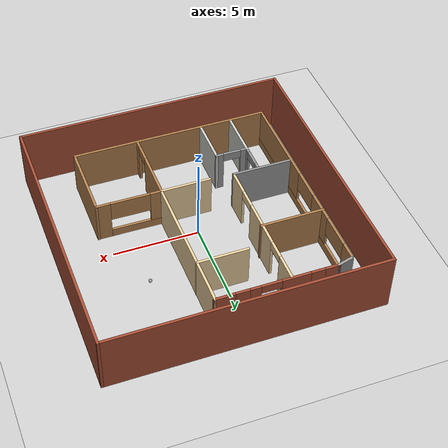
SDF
<sdf version="1.6">
 <world name="default">
  <plugin name="welcome_message" filename="libwelcome_message.so"/>
  <light name="sun" type="directional">
   <pose>0 0 10 0 -0 0</pose>
   <diffuse>0.8 0.8 0.8 1</diffuse>
   <specular>0.2 0.2 0.2 1</specular>
   <attenuation>
    <range>1000</range>
    <constant>0.9</constant>
    <linear>0.01</linear>
    <quadratic>0.001</quadratic>
   </attenuation>
   <direction>-0.5 0.1 -0.9</direction>
  </light>
  <model name="ground_plane">
   <static>1</static>
   <link name="link">
    <collision name="collision">
     <geometry><plane><normal>0 0 1</normal><size>100 100</size></plane></geometry>
     <surface>
      <contact><collide_bitmask>65535</collide_bitmask></contact>
      <friction><ode><mu>100</mu><mu2>50</mu2></ode></friction>
     </surface>
    </collision>
    <visual name="visual">
     <cast_shadows>0</cast_shadows>
     <geometry><plane><normal>0 0 1</normal><size>100 100</size></plane></geometry>
     <material>
      <script><uri>file://media/materials/scripts/gazebo.material</uri><name>Gazebo/Grey</name></script>
     </material>
    </visual>
   </link>
  </model>
  <gravity>0 0 -9.8</gravity>
  <magnetic_field>6e-06 2.3e-05 -4.2e-05</magnetic_field>
  <atmosphere type="adiabatic"/>
  <physics name="default_physics" default="0" type="ode">
   <max_step_size>0.001</max_step_size>
   <real_time_factor>1</real_time_factor>
   <real_time_update_rate>1000</real_time_update_rate>
  </physics>
  <scene><ambient>0.4 0.4 0.4 1</ambient><background>0.7 0.7 0.7 1</background><shadows>1</shadows></scene>
  <spherical_coordinates>
   <surface_model>EARTH_WGS84</surface_model>
   <latitude_deg>0</latitude_deg>
   <longitude_deg>0</longitude_deg>
   <elevation>0</elevation>
   <heading_deg>0</heading_deg>
  </spherical_coordinates>
  <model name="mybuilding">
   <pose>0.268 0.438 0 0 -0 0</pose>
   <link name="Wall_1">
    <collision name="Wall_1_Collision">
     <geometry><box><size>15.75 0.15 3.5</size></box></geometry>
     <pose>0 0 1.75 0 -0 0</pose>
    </collision>
    <visual name="Wall_1_Visual">
     <pose>0 0 1.75 0 -0 0</pose>
     <geometry><box><size>15.75 0.15 3.5</size></box></geometry>
     <material>
      <script><uri>file://media/materials/scripts/gazebo.material</uri><name>Gazebo/Bricks</name></script>
      <ambient>1 1 1 1</ambient>
     </material>
     <meta><layer>0</layer></meta>
    </visual>
    <pose>-7.8 0 0 0 0 -1.5708</pose>
   </link>
   <link name="Wall_10">
    <collision name="Wall_10_Collision">
     <geometry><box><size>11.6172 0.15 2.5</size></box></geometry>
     <pose>0 0 1.25 0 -0 0</pose>
    </collision>
    <visual name="Wall_10_Visual">
     <pose>0 0 1.25 0 -0 0</pose>
     <geometry><box><size>11.6172 0.15 2.5</size></box></geometry>
     <material>
      <script><uri>file://media/materials/scripts/gazebo.material</uri><name>Gazebo/Wood</name></script>
      <ambient>1 1 1 1</ambient>
     </material>
     <meta><layer>0</layer></meta>
    </visual>
    <pose>-0.627703 -6.25463 0 0 0 -0.001978</pose>
   </link>
   <link name="Wall_11">
    <collision name="Wall_11_Collision">
     <geometry><box><size>4.5 0.15 2.5</size></box></geometry>
     <pose>0 0 1.25 0 -0 0</pose>
    </collision>
    <visual name="Wall_11_Visual">
     <pose>0 0 1.25 0 -0 0</pose>
     <geometry><box><size>4.5 0.15 2.5</size></box></geometry>
     <material>
      <script><uri>file://media/materials/scripts/gazebo.material</uri><name>Gazebo/Wood</name></script>
      <ambient>1 1 1 1</ambient>
     </material>
     <meta><layer>0</layer></meta>
    </visual>
    <pose>5.12856 -4.06829 0 0 -0 1.5708</pose>
   </link>
   <link name="Wall_12">
    <pose>3.2473 -1.90463 0 0 -0 3.13549</pose>
    <visual name="Wall_12_Visual_0">
     <pose>-1.51079 0 1.25 0 -0 0</pose>
     <geometry><box><size>0.845659 0.15 2.5</size></box></geometry>
     <material>
      <script><uri>file://media/materials/scripts/gazebo.material</uri><name>Gazebo/Wood</name></script>
      <ambient>1 1 1 1</ambient>
     </material>
     <meta><layer>0</layer></meta>
    </visual>
    <collision name="Wall_12_Collision_0">
     <geometry><box><size>0.845659 0.15 2.5</size></box></geometry>
     <pose>-1.51079 0 1.25 0 -0 0</pose>
    </collision>
    <visual name="Wall_12_Visual_1">
     <pose>0.42283 0 0.25 0 -0 0</pose>
     <geometry><box><size>3.02157 0.15 0.5</size></box></geometry>
     <material>
      <script><uri>file://media/materials/scripts/gazebo.material</uri><name>Gazebo/Wood</name></script>
      <ambient>1 1 1 1</ambient>
     </material>
     <meta><layer>0</layer></meta>
    </visual>
    <collision name="Wall_12_Collision_1">
     <geometry><box><size>3.02157 0.15 0.5</size></box></geometry>
     <pose>0.42283 0 0.25 0 -0 0</pose>
    </collision>
    <visual name="Wall_12_Visual_2">
     <pose>1.56488 0 1.5 0 -0 0</pose>
     <geometry><box><size>0.737465 0.15 2</size></box></geometry>
     <material>
      <script><uri>file://media/materials/scripts/gazebo.material</uri><name>Gazebo/Wood</name></script>
      <ambient>1 1 1 1</ambient>
     </material>
     <meta><layer>0</layer></meta>
    </visual>
    <collision name="Wall_12_Collision_2">
     <geometry><box><size>0.737465 0.15 2</size></box></geometry>
     <pose>1.56488 0 1.5 0 -0 0</pose>
    </collision>
    <visual name="Wall_12_Visual_3">
     <pose>0.054097 0 1.9 0 -0 0</pose>
     <geometry><box><size>2.2841 0.15 1.2</size></box></geometry>
     <material>
      <script><uri>file://media/materials/scripts/gazebo.material</uri><name>Gazebo/Wood</name></script>
      <ambient>1 1 1 1</ambient>
     </material>
     <meta><layer>0</layer></meta>
    </visual>
    <collision name="Wall_12_Collision_3">
     <geometry><box><size>2.2841 0.15 1.2</size></box></geometry>
     <pose>0.054097 0 1.9 0 -0 0</pose>
    </collision>
   </link>
   <link name="Wall_13">
    <collision name="Wall_13_Collision">
     <geometry><box><size>8.4474 0.15 2.5</size></box></geometry>
     <pose>0 0 1.25 0 -0 0</pose>
    </collision>
    <visual name="Wall_13_Visual">
     <pose>0 0 1.25 0 -0 0</pose>
     <geometry><box><size>8.4474 0.15 2.5</size></box></geometry>
     <material>
      <script><uri>file://media/materials/scripts/gazebo.material</uri><name>Gazebo/Grey</name></script>
      <ambient>0.921569 0.807843 0.615686 1</ambient>
     </material>
     <meta><layer>0</layer></meta>
    </visual>
    <pose>1.36233 2.25533 0 0 -0 1.57716</pose>
   </link>
   <link name="Wall_15">
    <pose>-2.06267 6.40394 0 0 -0 3.14159</pose>
    <visual name="Wall_15_Visual_0">
     <pose>-2.90534 0 1.25 0 -0 0</pose>
     <geometry><box><size>1.18931 0.15 2.5</size></box></geometry>
     <material>
      <script><uri>file://media/materials/scripts/gazebo.material</uri><name>Gazebo/Bricks</name></script>
      <ambient>1 1 1 1</ambient>
     </material>
     <meta><layer>0</layer></meta>
    </visual>
    <collision name="Wall_15_Collision_0">
     <geometry><box><size>1.18931 0.15 2.5</size></box></geometry>
     <pose>-2.90534 0 1.25 0 -0 0</pose>
    </collision>
    <visual name="Wall_15_Visual_1">
     <pose>1.04595 0 1.25 0 -0 0</pose>
     <geometry><box><size>1.61849 0.15 2.5</size></box></geometry>
     <material>
      <script><uri>file://media/materials/scripts/gazebo.material</uri><name>Gazebo/Bricks</name></script>
      <ambient>1 1 1 1</ambient>
     </material>
     <meta><layer>0</layer></meta>
    </visual>
    <collision name="Wall_15_Collision_1">
     <geometry><box><size>1.61849 0.15 2.5</size></box></geometry>
     <pose>1.04595 0 1.25 0 -0 0</pose>
    </collision>
    <visual name="Wall_15_Visual_2">
     <pose>-1.60706 0 0.25 0 -0 0</pose>
     <geometry><box><size>1.40725 0.15 0.5</size></box></geometry>
     <material>
      <script><uri>file://media/materials/scripts/gazebo.material</uri><name>Gazebo/Bricks</name></script>
      <ambient>1 1 1 1</ambient>
     </material>
     <meta><layer>0</layer></meta>
    </visual>
    <collision name="Wall_15_Collision_2">
     <geometry><box><size>1.40725 0.15 0.5</size></box></geometry>
     <pose>-1.60706 0 0.25 0 -0 0</pose>
    </collision>
    <visual name="Wall_15_Visual_3">
     <pose>2.6776 0 0.25 0 -0 0</pose>
     <geometry><box><size>1.64481 0.15 0.5</size></box></geometry>
     <material>
      <script><uri>file://media/materials/scripts/gazebo.material</uri><name>Gazebo/Bricks</name></script>
      <ambient>1 1 1 1</ambient>
     </material>
     <meta><layer>0</layer></meta>
    </visual>
    <collision name="Wall_15_Collision_3">
     <geometry><box><size>1.64481 0.15 0.5</size></box></geometry>
     <pose>2.6776 0 0.25 0 -0 0</pose>
    </collision>
    <visual name="Wall_15_Visual_4">
     <pose>-1.20706 0 1.5 0 -0 0</pose>
     <geometry><box><size>0.60725 0.15 2</size></box></geometry>
     <material>
      <script><uri>file://media/materials/scripts/gazebo.material</uri><name>Gazebo/Bricks</name></script>
      <ambient>1 1 1 1</ambient>
     </material>
     <meta><layer>0</layer></meta>
    </visual>
    <collision name="Wall_15_Collision_4">
     <geometry><box><size>0.60725 0.15 2</size></box></geometry>
     <pose>-1.20706 0 1.5 0 -0 0</pose>
    </collision>
    <visual name="Wall_15_Visual_5">
     <pose>-1.20706 0 1.5 0 -0 0</pose>
     <geometry><box><size>0.60725 0.15 2</size></box></geometry>
     <material>
      <script><uri>file://media/materials/scripts/gazebo.material</uri><name>Gazebo/Bricks</name></script>
      <ambient>1 1 1 1</ambient>
     </material>
     <meta><layer>0</layer></meta>
    </visual>
    <collision name="Wall_15_Collision_5">
     <geometry><box><size>0.60725 0.15 2</size></box></geometry>
     <pose>-1.20706 0 1.5 0 -0 0</pose>
    </collision>
    <visual name="Wall_15_Visual_6">
     <pose>3.0776 0 1.5 0 -0 0</pose>
     <geometry><box><size>0.84481 0.15 2</size></box></geometry>
     <material>
      <script><uri>file://media/materials/scripts/gazebo.material</uri><name>Gazebo/Bricks</name></script>
      <ambient>1 1 1 1</ambient>
     </material>
     <meta><layer>0</layer></meta>
    </visual>
    <collision name="Wall_15_Collision_6">
     <geometry><box><size>0.84481 0.15 2</size></box></geometry>
     <pose>3.0776 0 1.5 0 -0 0</pose>
    </collision>
    <visual name="Wall_15_Visual_7">
     <pose>-1.91068 0 1.9 0 -0 0</pose>
     <geometry><box><size>0.8 0.15 1.2</size></box></geometry>
     <material>
      <script><uri>file://media/materials/scripts/gazebo.material</uri><name>Gazebo/Bricks</name></script>
      <ambient>1 1 1 1</ambient>
     </material>
     <meta><layer>0</layer></meta>
    </visual>
    <collision name="Wall_15_Collision_7">
     <geometry><box><size>0.8 0.15 1.2</size></box></geometry>
     <pose>-1.91068 0 1.9 0 -0 0</pose>
    </collision>
    <visual name="Wall_15_Visual_8">
     <pose>2.25519 0 1.9 0 -0 0</pose>
     <geometry><box><size>0.8 0.15 1.2</size></box></geometry>
     <material>
      <script><uri>file://media/materials/scripts/gazebo.material</uri><name>Gazebo/Bricks</name></script>
      <ambient>1 1 1 1</ambient>
     </material>
     <meta><layer>0</layer></meta>
    </visual>
    <collision name="Wall_15_Collision_8">
     <geometry><box><size>0.8 0.15 1.2</size></box></geometry>
     <pose>2.25519 0 1.9 0 -0 0</pose>
    </collision>
    <visual name="Wall_15_Visual_9">
     <pose>-0.333367 0 2.25 0 -0 0</pose>
     <geometry><box><size>1.14014 0.15 0.5</size></box></geometry>
     <material>
      <script><uri>file://media/materials/scripts/gazebo.material</uri><name>Gazebo/Bricks</name></script>
      <ambient>1 1 1 1</ambient>
     </material>
     <meta><layer>0</layer></meta>
    </visual>
    <collision name="Wall_15_Collision_9">
     <geometry><box><size>1.14014 0.15 0.5</size></box></geometry>
     <pose>-0.333367 0 2.25 0 -0 0</pose>
    </collision>
    <visual name="Wall_15_Visual_10">
     <pose>-0.333367 0 2.25 0 -0 0</pose>
     <geometry><box><size>1.14014 0.15 0.5</size></box></geometry>
     <material>
      <script><uri>file://media/materials/scripts/gazebo.material</uri><name>Gazebo/Bricks</name></script>
      <ambient>1 1 1 1</ambient>
     </material>
     <meta><layer>0</layer></meta>
    </visual>
    <collision name="Wall_15_Collision_10">
     <geometry><box><size>1.14014 0.15 0.5</size></box></geometry>
     <pose>-0.333367 0 2.25 0 -0 0</pose>
    </collision>
   </link>
   <link name="Wall_16">
    <collision name="Wall_16_Collision">
     <geometry><box><size>1 0.15 2.5</size></box></geometry>
     <pose>0 0 1.25 0 -0 0</pose>
    </collision>
    <visual name="Wall_16_Visual">
     <pose>0 0 1.25 0 -0 0</pose>
     <geometry><box><size>1 0.15 2.5</size></box></geometry>
     <material>
      <script><uri>file://media/materials/scripts/gazebo.material</uri><name>Gazebo/Grey</name></script>
      <ambient>1 1 1 1</ambient>
     </material>
     <meta><layer>0</layer></meta>
    </visual>
    <pose>-5.89818 6.29394 0 0 0 -2.87979</pose>
   </link>
   <link name="Wall_18">
    <pose>1.38872 -4.06829 0 0 0 -1.5708</pose>
    <visual name="Wall_18_Visual_0">
     <pose>-0.79921 0 1.25 0 -0 0</pose>
     <geometry><box><size>2.90158 0.15 2.5</size></box></geometry>
     <material>
      <script><uri>file://media/materials/scripts/gazebo.material</uri><name>Gazebo/Wood</name></script>
      <ambient>1 1 1 1</ambient>
     </material>
     <meta><layer>0</layer></meta>
    </visual>
    <collision name="Wall_18_Collision_0">
     <geometry><box><size>2.90158 0.15 2.5</size></box></geometry>
     <pose>-0.79921 0 1.25 0 -0 0</pose>
    </collision>
    <visual name="Wall_18_Visual_1">
     <pose>1.98655 0 1.25 0 -0 0</pose>
     <geometry><box><size>0.526894 0.15 2.5</size></box></geometry>
     <material>
      <script><uri>file://media/materials/scripts/gazebo.material</uri><name>Gazebo/Wood</name></script>
      <ambient>1 1 1 1</ambient>
     </material>
     <meta><layer>0</layer></meta>
    </visual>
    <collision name="Wall_18_Collision_1">
     <geometry><box><size>0.526894 0.15 2.5</size></box></geometry>
     <pose>1.98655 0 1.25 0 -0 0</pose>
    </collision>
    <visual name="Wall_18_Visual_2">
     <pose>1.18734 0 2.25 0 -0 0</pose>
     <geometry><box><size>1.07153 0.15 0.5</size></box></geometry>
     <material>
      <script><uri>file://media/materials/scripts/gazebo.material</uri><name>Gazebo/Wood</name></script>
      <ambient>1 1 1 1</ambient>
     </material>
     <meta><layer>0</layer></meta>
    </visual>
    <collision name="Wall_18_Collision_2">
     <geometry><box><size>1.07153 0.15 0.5</size></box></geometry>
     <pose>1.18734 0 2.25 0 -0 0</pose>
    </collision>
   </link>
   <link name="Wall_20">
    <pose>-2.86261 2.24435 0 0 0 -1.5708</pose>
    <visual name="Wall_20_Visual_0">
     <pose>-3.36815 0 1.25 0 -0 0</pose>
     <geometry><box><size>1.51371 0.15 2.5</size></box></geometry>
     <material>
      <script><uri>file://media/materials/scripts/gazebo.material</uri><name>Gazebo/Grey</name></script>
      <ambient>0.921569 0.807843 0.615686 1</ambient>
     </material>
     <meta><layer>0</layer></meta>
    </visual>
    <collision name="Wall_20_Collision_0">
     <geometry><box><size>1.51371 0.15 2.5</size></box></geometry>
     <pose>-3.36815 0 1.25 0 -0 0</pose>
    </collision>
    <visual name="Wall_20_Visual_1">
     <pose>-0.053108 0 1.25 0 -0 0</pose>
     <geometry><box><size>2.90134 0.15 2.5</size></box></geometry>
     <material>
      <script><uri>file://media/materials/scripts/gazebo.material</uri><name>Gazebo/Grey</name></script>
      <ambient>0.921569 0.807843 0.615686 1</ambient>
     </material>
     <meta><layer>0</layer></meta>
    </visual>
    <collision name="Wall_20_Collision_1">
     <geometry><box><size>2.90134 0.15 2.5</size></box></geometry>
     <pose>-0.053108 0 1.25 0 -0 0</pose>
    </collision>
    <visual name="Wall_20_Visual_2">
     <pose>3.34098 0 1.25 0 -0 0</pose>
     <geometry><box><size>1.56804 0.15 2.5</size></box></geometry>
     <material>
      <script><uri>file://media/materials/scripts/gazebo.material</uri><name>Gazebo/Grey</name></script>
      <ambient>0.921569 0.807843 0.615686 1</ambient>
     </material>
     <meta><layer>0</layer></meta>
    </visual>
    <collision name="Wall_20_Collision_2">
     <geometry><box><size>1.56804 0.15 2.5</size></box></geometry>
     <pose>3.34098 0 1.25 0 -0 0</pose>
    </collision>
    <visual name="Wall_20_Visual_3">
     <pose>-2.05754 0 2.25 0 -0 0</pose>
     <geometry><box><size>1.10752 0.15 0.5</size></box></geometry>
     <material>
      <script><uri>file://media/materials/scripts/gazebo.material</uri><name>Gazebo/Grey</name></script>
      <ambient>0.921569 0.807843 0.615686 1</ambient>
     </material>
     <meta><layer>0</layer></meta>
    </visual>
    <collision name="Wall_20_Collision_3">
     <geometry><box><size>1.10752 0.15 0.5</size></box></geometry>
     <pose>-2.05754 0 2.25 0 -0 0</pose>
    </collision>
    <visual name="Wall_20_Visual_4">
     <pose>1.97726 0 2.25 0 -0 0</pose>
     <geometry><box><size>1.1594 0.15 0.5</size></box></geometry>
     <material>
      <script><uri>file://media/materials/scripts/gazebo.material</uri><name>Gazebo/Grey</name></script>
      <ambient>0.921569 0.807843 0.615686 1</ambient>
     </material>
     <meta><layer>0</layer></meta>
    </visual>
    <collision name="Wall_20_Collision_4">
     <geometry><box><size>1.1594 0.15 0.5</size></box></geometry>
     <pose>1.97726 0 2.25 0 -0 0</pose>
    </collision>
   </link>
   <link name="Wall_21">
    <collision name="Wall_21_Collision">
     <geometry><box><size>3.5 0.15 2.5</size></box></geometry>
     <pose>0 0 1.25 0 -0 0</pose>
    </collision>
    <visual name="Wall_21_Visual">
     <pose>0 0 1.25 0 -0 0</pose>
     <geometry><box><size>3.5 0.15 2.5</size></box></geometry>
     <material>
      <script><uri>file://media/materials/scripts/gazebo.material</uri><name>Gazebo/Grey</name></script>
      <ambient>1 1 1 1</ambient>
     </material>
     <meta><layer>0</layer></meta>
    </visual>
    <pose>-4.53761 -1.80565 0 0 -0 3.14159</pose>
   </link>
   <link name="Wall_26">
    <collision name="Wall_26_Collision">
     <geometry><box><size>2.75 0.15 2.5</size></box></geometry>
     <pose>0 0 1.25 0 -0 0</pose>
    </collision>
    <visual name="Wall_26_Visual">
     <pose>0 0 1.25 0 -0 0</pose>
     <geometry><box><size>2.75 0.15 2.5</size></box></geometry>
     <material>
      <script><uri>file://media/materials/scripts/gazebo.material</uri><name>Gazebo/CeilingTiled</name></script>
      <ambient>1 1 1 1</ambient>
     </material>
     <meta><layer>0</layer></meta>
    </visual>
    <pose>-2.49644 -4.85535 0 0 -0 1.5708</pose>
   </link>
   <link name="Wall_27">
    <pose>-3.42144 -3.55535 0 0 -0 3.14159</pose>
    <visual name="Wall_27_Visual_0">
     <pose>-0.757188 0 1.25 0 -0 0</pose>
     <geometry><box><size>0.485624 0.15 2.5</size></box></geometry>
     <material>
      <script><uri>file://media/materials/scripts/gazebo.material</uri><name>Gazebo/Grey</name></script>
      <ambient>1 1 1 1</ambient>
     </material>
     <meta><layer>0</layer></meta>
    </visual>
    <collision name="Wall_27_Collision_0">
     <geometry><box><size>0.485624 0.15 2.5</size></box></geometry>
     <pose>-0.757188 0 1.25 0 -0 0</pose>
    </collision>
    <visual name="Wall_27_Visual_1">
     <pose>0.757661 0 1.25 0 -0 0</pose>
     <geometry><box><size>0.484678 0.15 2.5</size></box></geometry>
     <material>
      <script><uri>file://media/materials/scripts/gazebo.material</uri><name>Gazebo/Grey</name></script>
      <ambient>1 1 1 1</ambient>
     </material>
     <meta><layer>0</layer></meta>
    </visual>
    <collision name="Wall_27_Collision_1">
     <geometry><box><size>0.484678 0.15 2.5</size></box></geometry>
     <pose>0.757661 0 1.25 0 -0 0</pose>
    </collision>
    <visual name="Wall_27_Visual_2">
     <pose>0.000473 0 2.25 0 -0 0</pose>
     <geometry><box><size>1.0297 0.15 0.5</size></box></geometry>
     <material>
      <script><uri>file://media/materials/scripts/gazebo.material</uri><name>Gazebo/Grey</name></script>
      <ambient>1 1 1 1</ambient>
     </material>
     <meta><layer>0</layer></meta>
    </visual>
    <collision name="Wall_27_Collision_2">
     <geometry><box><size>1.0297 0.15 0.5</size></box></geometry>
     <pose>0.000473 0 2.25 0 -0 0</pose>
    </collision>
   </link>
   <link name="Wall_28">
    <pose>-4.34644 -2.75535 0 0 -0 1.5708</pose>
    <visual name="Wall_28_Visual_0">
     <pose>-0.675983 0 1.25 0 -0 0</pose>
     <geometry><box><size>0.398034 0.15 2.5</size></box></geometry>
     <material>
      <script><uri>file://media/materials/scripts/gazebo.material</uri><name>Gazebo/Grey</name></script>
      <ambient>1 1 1 1</ambient>
     </material>
     <meta><layer>0</layer></meta>
    </visual>
    <collision name="Wall_28_Collision_0">
     <geometry><box><size>0.398034 0.15 2.5</size></box></geometry>
     <pose>-0.675983 0 1.25 0 -0 0</pose>
    </collision>
    <visual name="Wall_28_Visual_1">
     <pose>0.700896 0 1.25 0 -0 0</pose>
     <geometry><box><size>0.348207 0.15 2.5</size></box></geometry>
     <material>
      <script><uri>file://media/materials/scripts/gazebo.material</uri><name>Gazebo/Grey</name></script>
      <ambient>1 1 1 1</ambient>
     </material>
     <meta><layer>0</layer></meta>
    </visual>
    <collision name="Wall_28_Collision_1">
     <geometry><box><size>0.348207 0.15 2.5</size></box></geometry>
     <pose>0.700896 0 1.25 0 -0 0</pose>
    </collision>
    <visual name="Wall_28_Visual_2">
     <pose>0.024914 0 2.25 0 -0 0</pose>
     <geometry><box><size>1.00376 0.15 0.5</size></box></geometry>
     <material>
      <script><uri>file://media/materials/scripts/gazebo.material</uri><name>Gazebo/Grey</name></script>
      <ambient>1 1 1 1</ambient>
     </material>
     <meta><layer>0</layer></meta>
    </visual>
    <collision name="Wall_28_Collision_2">
     <geometry><box><size>1.00376 0.15 0.5</size></box></geometry>
     <pose>0.024914 0 2.25 0 -0 0</pose>
    </collision>
   </link>
   <link name="Wall_30">
    <collision name="Wall_30_Collision">
     <geometry><box><size>2.75 0.15 2.5</size></box></geometry>
     <pose>0 0 1.25 0 -0 0</pose>
    </collision>
    <visual name="Wall_30_Visual">
     <pose>0 0 1.25 0 -0 0</pose>
     <geometry><box><size>2.75 0.15 2.5</size></box></geometry>
     <material>
      <script><uri>file://media/materials/scripts/gazebo.material</uri><name>Gazebo/CeilingTiled</name></script>
      <ambient>1 1 1 1</ambient>
     </material>
     <meta><layer>0</layer></meta>
    </visual>
    <pose>-4.34644 -4.85535 0 0 0 -1.5708</pose>
   </link>
   <link name="Wall_32">
    <collision name="Wall_32_Collision">
     <geometry><box><size>3.75 0.15 2.5</size></box></geometry>
     <pose>0 0 1.25 0 -0 0</pose>
    </collision>
    <visual name="Wall_32_Visual">
     <pose>0 0 1.25 0 -0 0</pose>
     <geometry><box><size>3.75 0.15 2.5</size></box></geometry>
     <material>
      <script><uri>file://media/materials/scripts/gazebo.material</uri><name>Gazebo/Wood</name></script>
      <ambient>1 1 1 1</ambient>
     </material>
     <meta><layer>0</layer></meta>
    </visual>
    <pose>-4.59551 2.45136 0 0 -0 3.14159</pose>
   </link>
   <link name="Wall_34">
    <collision name="Wall_34_Collision">
     <geometry><box><size>3 0.15 2.5</size></box></geometry>
     <pose>0 0 1.25 0 -0 0</pose>
    </collision>
    <visual name="Wall_34_Visual">
     <pose>0 0 1.25 0 -0 0</pose>
     <geometry><box><size>3 0.15 2.5</size></box></geometry>
     <material>
      <script><uri>file://media/materials/scripts/gazebo.material</uri><name>Gazebo/Grey</name></script>
      <ambient>0.921569 0.807843 0.615686 1</ambient>
     </material>
     <meta><layer>0</layer></meta>
    </visual>
    <pose>-0.061026 3.7617 0 0 -0 3.14159</pose>
   </link>
   <link name="Wall_36">
    <collision name="Wall_36_Collision">
     <geometry><box><size>3 0.15 2.5</size></box></geometry>
     <pose>0 0 1.25 0 -0 0</pose>
    </collision>
    <visual name="Wall_36_Visual">
     <pose>0 0 1.25 0 -0 0</pose>
     <geometry><box><size>3 0.15 2.5</size></box></geometry>
     <material>
      <script><uri>file://media/materials/scripts/gazebo.material</uri><name>Gazebo/Grey</name></script>
      <ambient>0.921569 0.807843 0.615686 1</ambient>
     </material>
     <meta><layer>0</layer></meta>
    </visual>
    <pose>-0.036282 -1.89329 0 0 -0 3.14159</pose>
   </link>
   <link name="Wall_4">
    <collision name="Wall_4_Collision">
     <geometry><box><size>15.75 0.15 3.5</size></box></geometry>
     <pose>0 0 1.75 0 -0 0</pose>
    </collision>
    <visual name="Wall_4_Visual">
     <pose>0 0 1.75 0 -0 0</pose>
     <geometry><box><size>15.75 0.15 3.5</size></box></geometry>
     <material>
      <script><uri>file://media/materials/scripts/gazebo.material</uri><name>Gazebo/Bricks</name></script>
      <ambient>1 1 1 1</ambient>
     </material>
     <meta><layer>0</layer></meta>
    </visual>
    <pose>0 -7.8 0 0 -0 0</pose>
   </link>
   <link name="Wall_5">
    <collision name="Wall_5_Collision">
     <geometry><box><size>15.75 0.15 3.5</size></box></geometry>
     <pose>0 0 1.75 0 -0 0</pose>
    </collision>
    <visual name="Wall_5_Visual">
     <pose>0 0 1.75 0 -0 0</pose>
     <geometry><box><size>15.75 0.15 3.5</size></box></geometry>
     <material>
      <script><uri>file://media/materials/scripts/gazebo.material</uri><name>Gazebo/Bricks</name></script>
      <ambient>1 1 1 1</ambient>
     </material>
     <meta><layer>0</layer></meta>
    </visual>
    <pose>7.8 0 0 0 -0 1.5708</pose>
   </link>
   <link name="Wall_6">
    <collision name="Wall_6_Collision">
     <geometry><box><size>15.75 0.15 3.5</size></box></geometry>
     <pose>0 0 1.75 0 -0 0</pose>
    </collision>
    <visual name="Wall_6_Visual">
     <pose>0 0 1.75 0 -0 0</pose>
     <geometry><box><size>15.75 0.15 3.5</size></box></geometry>
     <material>
      <script><uri>file://media/materials/scripts/gazebo.material</uri><name>Gazebo/Bricks</name></script>
      <ambient>1 1 1 1</ambient>
     </material>
     <meta><layer>0</layer></meta>
    </visual>
    <pose>0 7.8 0 0 -0 3.14159</pose>
   </link>
   <link name="Wall_8">
    <pose>-6.36128 -0.068291 0 0 0 -1.5708</pose>
    <visual name="Wall_8_Visual_0">
     <pose>-5.73233 0 1.25 0 -0 0</pose>
     <geometry><box><size>1.03535 0.15 2.5</size></box></geometry>
     <material>
      <script><uri>file://media/materials/scripts/gazebo.material</uri><name>Gazebo/Wood</name></script>
      <ambient>1 1 1 1</ambient>
     </material>
     <meta><layer>0</layer></meta>
    </visual>
    <collision name="Wall_8_Collision_0">
     <geometry><box><size>1.03535 0.15 2.5</size></box></geometry>
     <pose>-5.73233 0 1.25 0 -0 0</pose>
    </collision>
    <visual name="Wall_8_Visual_1">
     <pose>0.517674 0 0.25 0 -0 0</pose>
     <geometry><box><size>11.4647 0.15 0.5</size></box></geometry>
     <material>
      <script><uri>file://media/materials/scripts/gazebo.material</uri><name>Gazebo/Wood</name></script>
      <ambient>1 1 1 1</ambient>
     </material>
     <meta><layer>0</layer></meta>
    </visual>
    <collision name="Wall_8_Collision_1">
     <geometry><box><size>11.4647 0.15 0.5</size></box></geometry>
     <pose>0.517674 0 0.25 0 -0 0</pose>
    </collision>
    <visual name="Wall_8_Visual_2">
     <pose>-2.28127 0 1.5 0 -0 0</pose>
     <geometry><box><size>1.90404 0.15 2</size></box></geometry>
     <material>
      <script><uri>file://media/materials/scripts/gazebo.material</uri><name>Gazebo/Wood</name></script>
      <ambient>1 1 1 1</ambient>
     </material>
     <meta><layer>0</layer></meta>
    </visual>
    <collision name="Wall_8_Collision_2">
     <geometry><box><size>1.90404 0.15 2</size></box></geometry>
     <pose>-2.28127 0 1.5 0 -0 0</pose>
    </collision>
    <visual name="Wall_8_Visual_3">
     <pose>3.3831 0 1.5 0 -0 0</pose>
     <geometry><box><size>5.73379 0.15 2</size></box></geometry>
     <material>
      <script><uri>file://media/materials/scripts/gazebo.material</uri><name>Gazebo/Wood</name></script>
      <ambient>1 1 1 1</ambient>
     </material>
     <meta><layer>0</layer></meta>
    </visual>
    <collision name="Wall_8_Collision_3">
     <geometry><box><size>5.73379 0.15 2</size></box></geometry>
     <pose>3.3831 0 1.5 0 -0 0</pose>
    </collision>
    <visual name="Wall_8_Visual_4">
     <pose>-4.22397 0 1.9 0 -0 0</pose>
     <geometry><box><size>1.98136 0.15 1.2</size></box></geometry>
     <material>
      <script><uri>file://media/materials/scripts/gazebo.material</uri><name>Gazebo/Wood</name></script>
      <ambient>1 1 1 1</ambient>
     </material>
     <meta><layer>0</layer></meta>
    </visual>
    <collision name="Wall_8_Collision_4">
     <geometry><box><size>1.98136 0.15 1.2</size></box></geometry>
     <pose>-4.22397 0 1.9 0 -0 0</pose>
    </collision>
    <visual name="Wall_8_Visual_5">
     <pose>-0.406519 0 1.9 0 -0 0</pose>
     <geometry><box><size>1.84545 0.15 1.2</size></box></geometry>
     <material>
      <script><uri>file://media/materials/scripts/gazebo.material</uri><name>Gazebo/Wood</name></script>
      <ambient>1 1 1 1</ambient>
     </material>
     <meta><layer>0</layer></meta>
    </visual>
    <collision name="Wall_8_Collision_5">
     <geometry><box><size>1.84545 0.15 1.2</size></box></geometry>
     <pose>-0.406519 0 1.9 0 -0 0</pose>
    </collision>
   </link>
   <static>1</static>
  </model>
  <model name="my_ball">
   <link name="link_0_clone">
    <inertial>
     <mass>1</mass>
     <inertia><ixx>0.1</ixx><ixy>0</ixy><ixz>0</ixz><iyy>0.1</iyy><iyz>0</iyz><izz>0.1</izz></inertia>
    </inertial>
    <visual name="visual">
     <geometry><sphere><radius>0.1</radius></sphere></geometry>
     <material>
      <lighting>1</lighting>
      <script><uri>file://media/materials/scripts/gazebo.material</uri><name>Gazebo/Grey</name></script>
      <shader type="pixel"><normal_map>__default__</normal_map></shader>
      <ambient>1 1 1 1</ambient>
      <diffuse>1 1 1 1</diffuse>
      <specular>1 1 1 1</specular>
      <emissive>1 1 1 1</emissive>
     </material>
    </visual>
    <collision name="collision">
     <geometry><sphere><radius>0.1</radius></sphere></geometry>
     <surface>
      <friction>
       <ode><mu>1</mu><mu2>1</mu2><fdir1>0 0 0</fdir1><slip1>0</slip1><slip2>0</slip2></ode>
       <torsional>
        <coefficient>1</coefficient>
        <patch_radius>0</patch_radius>
        <surface_radius>0</surface_radius>
        <use_patch_radius>1</use_patch_radius>
        <ode><slip>0</slip></ode>
       </torsional>
      </friction>
      <bounce><restitution_coefficient>0</restitution_coefficient><threshold>1e+06</threshold></bounce>
      <contact>
       <collide_without_contact>0</collide_without_contact>
       <collide_without_contact_bitmask>1</collide_without_contact_bitmask>
       <collide_bitmask>1</collide_bitmask>
       <ode>
        <soft_cfm>0</soft_cfm>
        <soft_erp>0.2</soft_erp>
        <kp>1e+13</kp>
        <kd>1</kd>
        <max_vel>0.01</max_vel>
        <min_depth>0</min_depth>
       </ode>
       <bullet>
        <split_impulse>1</split_impulse>
        <split_impulse_penetration_threshold>-0.01</split_impulse_penetration_threshold>
        <soft_cfm>0</soft_cfm>
        <soft_erp>0.2</soft_erp>
        <kp>1e+13</kp>
        <kd>1</kd>
       </bullet>
      </contact>
     </surface>
    </collision>
   </link>
   <static>0</static>
   <pose>3.68969 2.56119 0.1 0 -0 0</pose>
  </model>
  <plugin filename="libcollision_map_creator.so" name="collision_map_creator"/>
 </world>
</sdf>
